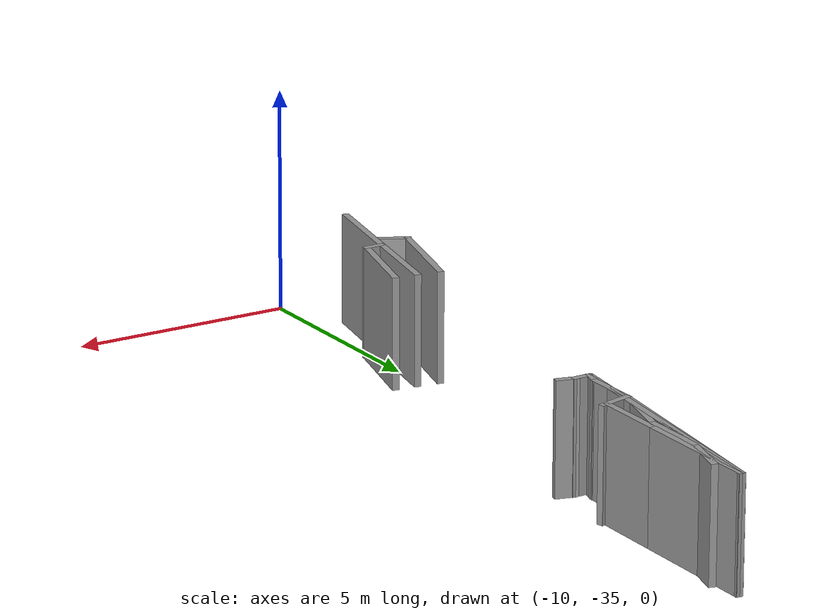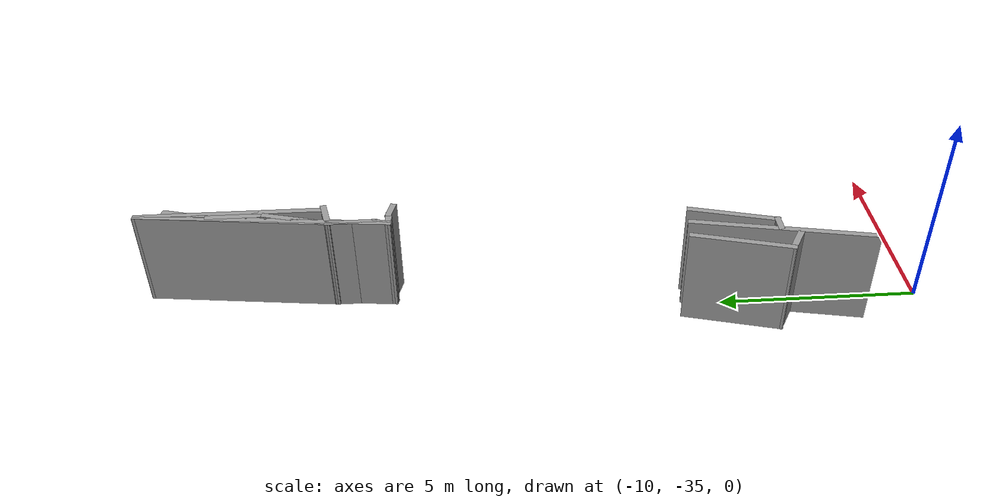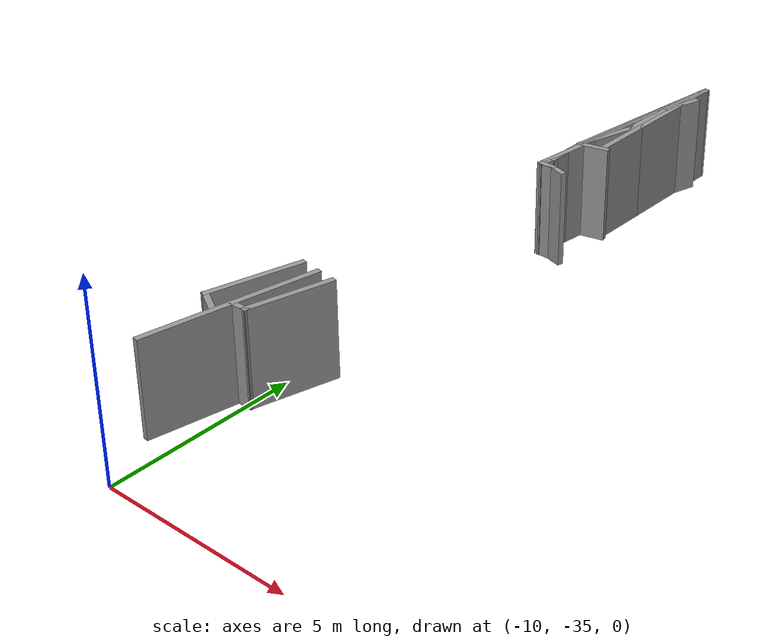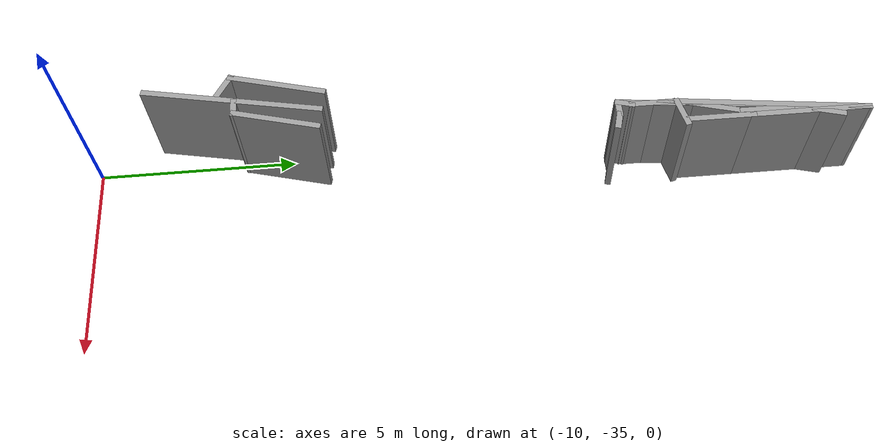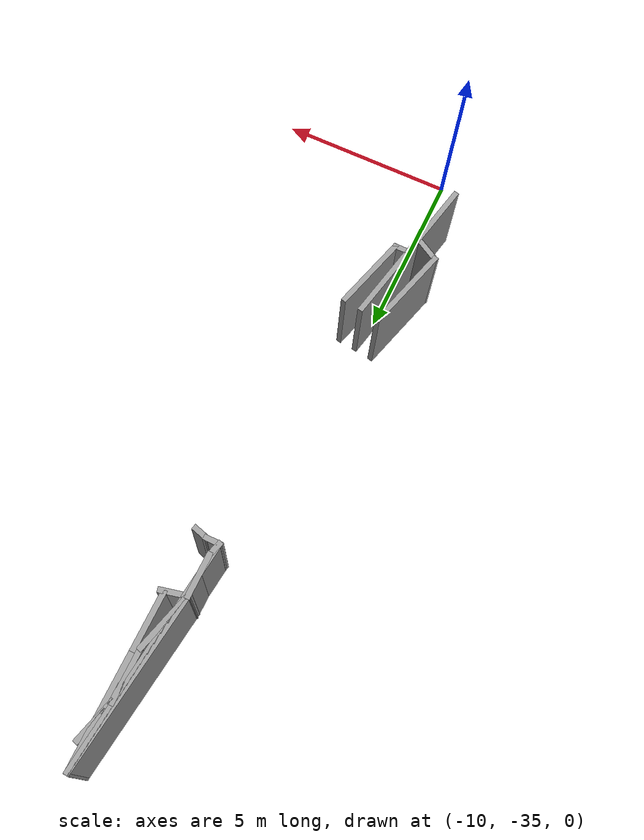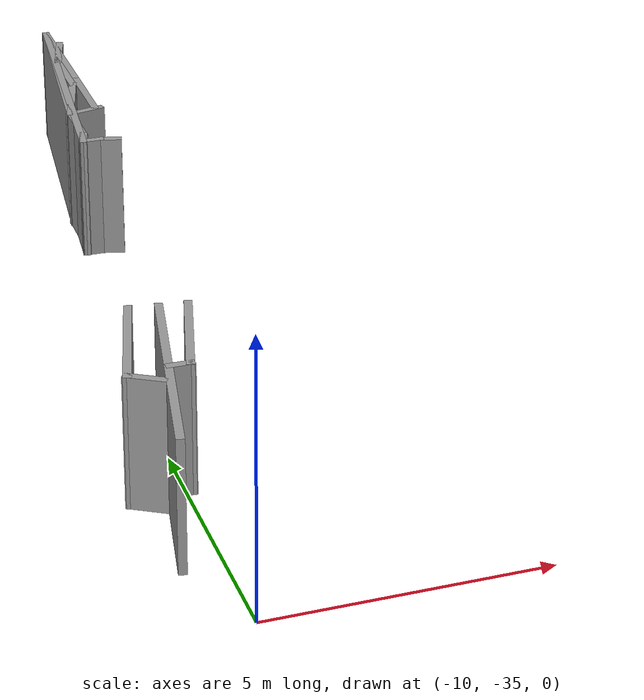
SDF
<sdf version="1.6">
 <model name="car_parking_underground_big_1">
  <pose>-9.36123 -7.37411 0 0 -0 0</pose>
  <link name="Wall_145">
   <collision name="Wall_145_Collision">
    <geometry><box><size>1.25 0.15 2.5</size></box></geometry>
    <pose>0 0 1.25 0 -0 0</pose>
   </collision>
   <visual name="Wall_145_Visual">
    <pose>0 0 1.25 0 -0 0</pose>
    <geometry><box><size>1.25 0.15 2.5</size></box></geometry>
    <material>
     <script><uri>file://media/materials/scripts/gazebo.material</uri><name>Gazebo/Grey</name></script>
     <ambient>1 1 1 1</ambient>
    </material>
    <meta><layer>0</layer></meta>
   </visual>
   <pose>0.588162 -9.61131 0 0 -0 -1.8326</pose>
  </link>
  <link name="Wall_146">
   <collision name="Wall_146_Collision">
    <geometry><box><size>1.5 0.15 2.5</size></box></geometry>
    <pose>0 0 1.25 0 -0 0</pose>
   </collision>
   <visual name="Wall_146_Visual">
    <pose>0 0 1.25 0 -0 0</pose>
    <geometry><box><size>1.5 0.15 2.5</size></box></geometry>
    <material>
     <script><uri>file://media/materials/scripts/gazebo.material</uri><name>Gazebo/Grey</name></script>
     <ambient>1 1 1 1</ambient>
    </material>
    <meta><layer>0</layer></meta>
   </visual>
   <pose>0.445812 -10.8176 0 0 -0 -1.5708</pose>
  </link>
  <link name="Wall_147">
   <collision name="Wall_147_Collision">
    <geometry><box><size>1.75 0.15 2.5</size></box></geometry>
    <pose>0 0 1.25 0 -0 0</pose>
   </collision>
   <visual name="Wall_147_Visual">
    <pose>0 0 1.25 0 -0 0</pose>
    <geometry><box><size>1.75 0.15 2.5</size></box></geometry>
    <material>
     <script><uri>file://media/materials/scripts/gazebo.material</uri><name>Gazebo/Grey</name></script>
     <ambient>1 1 1 1</ambient>
    </material>
    <meta><layer>0</layer></meta>
   </visual>
   <pose>0.238757 -12.2653 0 0 -0 -1.8326</pose>
  </link>
  <link name="Wall_148">
   <collision name="Wall_148_Collision">
    <geometry><box><size>1.25 0.15 2.5</size></box></geometry>
    <pose>0 0 1.25 0 -0 0</pose>
   </collision>
   <visual name="Wall_148_Visual">
    <pose>0 0 1.25 0 -0 0</pose>
    <geometry><box><size>1.25 0.15 2.5</size></box></geometry>
    <material>
     <script><uri>file://media/materials/scripts/gazebo.material</uri><name>Gazebo/Grey</name></script>
     <ambient>1 1 1 1</ambient>
    </material>
    <meta><layer>0</layer></meta>
   </visual>
   <pose>0.031701 -13.5881 0 0 -0 -1.5708</pose>
  </link>
  <link name="Wall_149">
   <collision name="Wall_149_Collision">
    <geometry><box><size>0.5 0.15 2.5</size></box></geometry>
    <pose>0 0 1.25 0 -0 0</pose>
   </collision>
   <visual name="Wall_149_Visual">
    <pose>0 0 1.25 0 -0 0</pose>
    <geometry><box><size>0.5 0.15 2.5</size></box></geometry>
    <material>
     <script><uri>file://media/materials/scripts/gazebo.material</uri><name>Gazebo/Grey</name></script>
     <ambient>1 1 1 1</ambient>
    </material>
    <meta><layer>0</layer></meta>
   </visual>
   <pose>-0.013592 -14.3071 0 0 -0 -1.8326</pose>
  </link>
  <link name="Wall_150">
   <collision name="Wall_150_Collision">
    <geometry><box><size>0.5 0.15 2.5</size></box></geometry>
    <pose>0 0 1.25 0 -0 0</pose>
   </collision>
   <visual name="Wall_150_Visual">
    <pose>0 0 1.25 0 -0 0</pose>
    <geometry><box><size>0.5 0.15 2.5</size></box></geometry>
    <material>
     <script><uri>file://media/materials/scripts/gazebo.material</uri><name>Gazebo/Grey</name></script>
     <ambient>1 1 1 1</ambient>
    </material>
    <meta><layer>0</layer></meta>
   </visual>
   <pose>0.116115 -14.4761 0 0 -0 0</pose>
  </link>
  <link name="Wall_151">
   <collision name="Wall_151_Collision">
    <geometry><box><size>0.5 0.15 2.5</size></box></geometry>
    <pose>0 0 1.25 0 -0 0</pose>
   </collision>
   <visual name="Wall_151_Visual">
    <pose>0 0 1.25 0 -0 0</pose>
    <geometry><box><size>0.5 0.15 2.5</size></box></geometry>
    <material>
     <script><uri>file://media/materials/scripts/gazebo.material</uri><name>Gazebo/Grey</name></script>
     <ambient>1 1 1 1</ambient>
    </material>
    <meta><layer>0</layer></meta>
   </visual>
   <pose>0.460152 -14.5214 0 0 -0 -0.261799</pose>
  </link>
  <link name="Wall_155">
   <collision name="Wall_155_Collision">
    <geometry><box><size>1.75 0.15 2.5</size></box></geometry>
    <pose>0 0 1.25 0 -0 0</pose>
   </collision>
   <visual name="Wall_155_Visual">
    <pose>0 0 1.25 0 -0 0</pose>
    <geometry><box><size>1.75 0.15 2.5</size></box></geometry>
    <material>
     <script><uri>file://media/materials/scripts/gazebo.material</uri><name>Gazebo/Grey</name></script>
     <ambient>1 1 1 1</ambient>
    </material>
    <meta><layer>0</layer></meta>
   </visual>
   <pose>0.582597 -12.0542 0 0 -0 1.5708</pose>
  </link>
  <link name="Wall_156">
   <collision name="Wall_156_Collision">
    <geometry><box><size>3 0.15 2.5</size></box></geometry>
    <pose>0 0 1.25 0 -0 0</pose>
   </collision>
   <visual name="Wall_156_Visual">
    <pose>0 0 1.25 0 -0 0</pose>
    <geometry><box><size>3 0.15 2.5</size></box></geometry>
    <material>
     <script><uri>file://media/materials/scripts/gazebo.material</uri><name>Gazebo/Grey</name></script>
     <ambient>1 1 1 1</ambient>
    </material>
    <meta><layer>0</layer></meta>
   </visual>
   <pose>0.582597 -9.82923 0 0 -0 1.5708</pose>
  </link>
  <link name="Wall_161">
   <collision name="Wall_161_Collision">
    <geometry><box><size>4.81646 0.15 2.5</size></box></geometry>
    <pose>0 0 1.25 0 -0 0</pose>
   </collision>
   <visual name="Wall_161_Visual">
    <pose>0 0 1.25 0 -0 0</pose>
    <geometry><box><size>4.81646 0.15 2.5</size></box></geometry>
    <material>
     <script><uri>file://media/materials/scripts/gazebo.material</uri><name>Gazebo/Grey</name></script>
     <ambient>1 1 1 1</ambient>
    </material>
    <meta><layer>0</layer></meta>
   </visual>
   <pose>0.307149 -10.7211 0 0 -0 -1.68913</pose>
  </link>
  <link name="Wall_162">
   <collision name="Wall_162_Collision">
    <geometry><box><size>0.816472 0.15 2.5</size></box></geometry>
    <pose>0 0 1.25 0 -0 0</pose>
   </collision>
   <visual name="Wall_162_Visual">
    <pose>0 0 1.25 0 -0 0</pose>
    <geometry><box><size>0.816472 0.15 2.5</size></box></geometry>
    <material>
     <script><uri>file://media/materials/scripts/gazebo.material</uri><name>Gazebo/Grey</name></script>
     <ambient>1 1 1 1</ambient>
    </material>
    <meta><layer>0</layer></meta>
   </visual>
   <pose>0.355445 -12.9591 0 0 -0 0.239258</pose>
  </link>
  <link name="Wall_169">
   <collision name="Wall_169_Collision">
    <geometry><box><size>6.25569 0.15 2.5</size></box></geometry>
    <pose>0 0 1.25 0 -0 0</pose>
   </collision>
   <visual name="Wall_169_Visual">
    <pose>0 0 1.25 0 -0 0</pose>
    <geometry><box><size>6.25569 0.15 2.5</size></box></geometry>
    <material>
     <script><uri>file://media/materials/scripts/gazebo.material</uri><name>Gazebo/Grey</name></script>
     <ambient>1 1 1 1</ambient>
    </material>
    <meta><layer>0</layer></meta>
   </visual>
   <pose>0.261856 -11.4402 0 0 -0 -1.67605</pose>
  </link>
  <link name="Wall_798">
   <collision name="Wall_798_Collision">
    <geometry><box><size>4.52033 0.15 2.5</size></box></geometry>
    <pose>0 0 1.25 0 -0 0</pose>
   </collision>
   <visual name="Wall_798_Visual">
    <pose>0 0 1.25 0 -0 0</pose>
    <geometry><box><size>4.52033 0.15 2.5</size></box></geometry>
    <material>
     <script><uri>file://media/materials/scripts/gazebo.material</uri><name>Gazebo/Grey</name></script>
     <ambient>1 1 1 1</ambient>
    </material>
    <meta><layer>0</layer></meta>
   </visual>
   <pose>-0.923693 -23.8519 0 0 -0 -1.7659</pose>
  </link>
  <link name="Wall_808">
   <collision name="Wall_808_Collision">
    <geometry><box><size>2.5 0.15 2.5</size></box></geometry>
    <pose>0 0 1.25 0 -0 0</pose>
   </collision>
   <visual name="Wall_808_Visual">
    <pose>0 0 1.25 0 -0 0</pose>
    <geometry><box><size>2.5 0.15 2.5</size></box></geometry>
    <material>
     <script><uri>file://media/materials/scripts/gazebo.material</uri><name>Gazebo/Grey</name></script>
     <ambient>1 1 1 1</ambient>
    </material>
    <meta><layer>0</layer></meta>
   </visual>
   <pose>-1.32893 -22.7678 0 0 -0 -1.8326</pose>
  </link>
  <link name="Wall_809">
   <collision name="Wall_809_Collision">
    <geometry><box><size>0.75 0.15 2.5</size></box></geometry>
    <pose>0 0 1.25 0 -0 0</pose>
   </collision>
   <visual name="Wall_809_Visual">
    <pose>0 0 1.25 0 -0 0</pose>
    <geometry><box><size>0.75 0.15 2.5</size></box></geometry>
    <material>
     <script><uri>file://media/materials/scripts/gazebo.material</uri><name>Gazebo/Grey</name></script>
     <ambient>1 1 1 1</ambient>
    </material>
    <meta><layer>0</layer></meta>
   </visual>
   <pose>-1.37323 -24.0528 0 0 -0 -0.523599</pose>
  </link>
  <link name="Wall_811">
   <collision name="Wall_811_Collision">
    <geometry><box><size>0.5 0.15 2.5</size></box></geometry>
    <pose>0 0 1.25 0 -0 0</pose>
   </collision>
   <visual name="Wall_811_Visual">
    <pose>0 0 1.25 0 -0 0</pose>
    <geometry><box><size>0.5 0.15 2.5</size></box></geometry>
    <material>
     <script><uri>file://media/materials/scripts/gazebo.material</uri><name>Gazebo/Grey</name></script>
     <ambient>1 1 1 1</ambient>
    </material>
    <meta><layer>0</layer></meta>
   </visual>
   <pose>-0.714625 -23.7959 0 0 -0 0</pose>
  </link>
  <link name="Wall_812">
   <collision name="Wall_812_Collision">
    <geometry><box><size>2.25 0.15 2.5</size></box></geometry>
    <pose>0 0 1.25 0 -0 0</pose>
   </collision>
   <visual name="Wall_812_Visual">
    <pose>0 0 1.25 0 -0 0</pose>
    <geometry><box><size>2.25 0.15 2.5</size></box></geometry>
    <material>
     <script><uri>file://media/materials/scripts/gazebo.material</uri><name>Gazebo/Grey</name></script>
     <ambient>1 1 1 1</ambient>
    </material>
    <meta><layer>0</layer></meta>
   </visual>
   <pose>-0.267865 -22.7817 0 0 -0 1.309</pose>
  </link>
  <static>1</static>
 </model>
</sdf>
